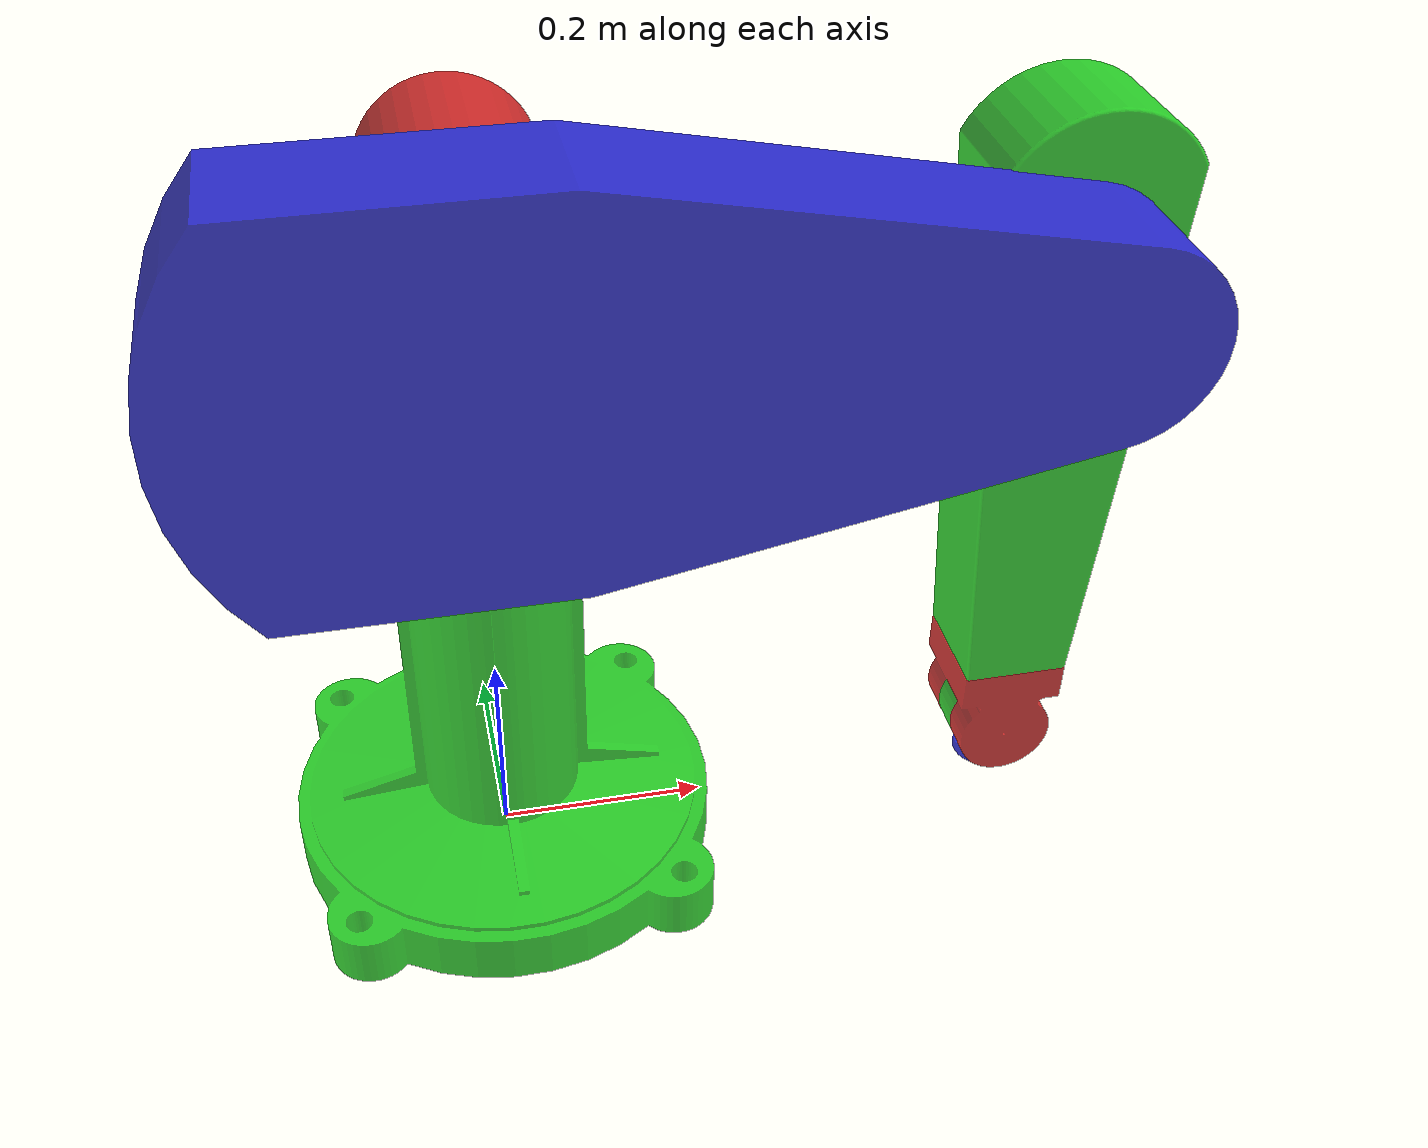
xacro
<?xml version="1.0"?>
<robot name="Puma560" xmlns:xacro="http://www.ros.org/wiki/xacro">

  <xacro:macro name="puma560_link_geometry" params="link_num">
    <mesh filename="package://puma560_description/meshes/puma_link${link_num}.stl" scale="${0.001*25.4} ${25.4*0.001} ${25.4*0.001}"/>
  </xacro:macro>

  <material name="blue">
    <color rgba="0 0 0.8 0.8"/>
  </material>

  <material name="red">
    <color rgba="0.8 0 0 0.8"/>
  </material>

  <material name="green">
    <color rgba="0 0.8 0 0.8"/>
  </material>

  <xacro:property name="M_PI" value="3.14159265"/>

  <!-- DH Paramaters -->
  <xacro:property name="d_1" value="0.6718"/>
  <xacro:property name="d_2" value="0.1501"/>
  <xacro:property name="d_3" value="0"/>
  <xacro:property name="d_4" value="0.4331"/>
  <xacro:property name="d_5" value="0"/>
  <xacro:property name="d_6" value="0.0558"/>

  <xacro:property name="a_1" value="0"/>
  <xacro:property name="a_2" value="0.4318"/>
  <xacro:property name="a_3" value="-0.0203"/>
  <xacro:property name="a_4" value="0"/>
  <xacro:property name="a_5" value="0"/>
  <xacro:property name="a_6" value="0"/>

  <link name="link1">
    <visual>
      <geometry>
        <xacro:puma560_link_geometry link_num="1"/>
      </geometry>
      <origin rpy="0 0 ${M_PI/2}"/>
      <material name="green"/>
    </visual>
  </link>

  <link name="link2">
    <visual>
      <geometry>
        <xacro:puma560_link_geometry link_num="2"/>
      </geometry>
      <origin xyz="0 0 -0.1" rpy="0 0 0"/>
      <material name="red"/>
    </visual>
  </link>

  <joint name="j1" type="revolute">
    <parent link="link1"/>
    <child link="link2"/>
    <origin xyz="0 0 ${d_1}" rpy="${M_PI/2} 0 0"/>
    <axis xyz="0 1 0"/> <!-- This is descibed in child frame -->
    <limit effort="1000.0" lower="${-M_PI}" upper="${M_PI}" velocity="0"/>
  </joint>

  <link name="link3">
    <visual>
      <geometry>
        <xacro:puma560_link_geometry link_num="3"/>
      </geometry>
      <origin xyz="0 0 ${0.0435+d_2}"/>
      <material name="blue"/>
    </visual>
  </link>

  <joint name="j2" type="revolute">
    <parent link="link2"/>
    <child link="link3"/>
    <origin xyz="0 0 0" rpy="0 0 0"/>
    <axis xyz="0 0 1"/> <!-- This is descibed in child frame -->
    <limit effort="1000.0" lower="${-M_PI/2}" upper="${M_PI/2}" velocity="0"/>
  </joint>

  <link name="link4">
    <visual>
      <geometry>
        <xacro:puma560_link_geometry link_num="4"/>
      </geometry>
      <origin xyz="0 0 0" rpy="0 0 0"/>
      <material name="green"/>
    </visual>
  </link>

  <joint name="j3" type="revolute">
    <parent link="link3"/>
    <child link="link4"/>
    <origin xyz="${a_2} ${a_3} ${d_2}" rpy="0 0 ${-M_PI/2}"/>
    <axis xyz="0 0 1"/> <!-- This is descibed in child frame -->
    <limit effort="1000.0" lower="${-M_PI/2}" upper="${M_PI/2}" velocity="0"/>
  </joint>

  <link name="link5">
    <visual>
      <geometry>
        <xacro:puma560_link_geometry link_num="5"/>
      </geometry>
      <origin xyz="0 0 ${d_4-0.071}" rpy="0 0 ${M_PI/2}"/>
      <material name="red"/>
    </visual>
  </link>

  <joint name="j4" type="revolute">
    <parent link="link4"/>
    <child link="link5"/>
    <origin xyz="0 0 0" rpy="${M_PI/2} 0 ${M_PI/2}"/>
    <axis xyz="0 0 1"/>
    <limit effort="1000.0" lower="${-M_PI/2}" upper="${M_PI/2}" velocity="0"/>
  </joint>

  <link name="link6">
    <visual>
      <geometry>
        <xacro:puma560_link_geometry link_num="6"/>
      </geometry>
      <origin xyz="0 0 0" rpy="${M_PI} 0 ${M_PI/2}"/>
      <material name="green"/>
    </visual>
  </link>

  <joint name="j5" type="revolute">
    <parent link="link5"/>
    <child link="link6"/>
    <origin xyz="0 0 ${d_4}" rpy="${M_PI/2} 0 0"/>
    <axis xyz="0 0 1"/>
    <limit effort="1000.0" lower="${-M_PI/2}" upper="${M_PI/2}" velocity="0"/>
  </joint>

  <link name="link7">
    <visual>
      <geometry>
        <xacro:puma560_link_geometry link_num="7"/>
      </geometry>
      <origin xyz="0 0 -0.010" rpy="0 0 0"/>
      <material name="blue"/>
    </visual>
    <bow tags="effector"/>
  </link>

  <joint name="j6" type="revolute">
    <parent link="link6"/>
    <child link="link7"/>
    <origin xyz="0 ${d_6} 0" rpy="${-M_PI/2} 0 0"/>
    <axis xyz="0 0 1"/>
    <limit effort="1000.0" lower="${-M_PI/2}" upper="${M_PI/2}" velocity="0"/>
  </joint>

</robot>
